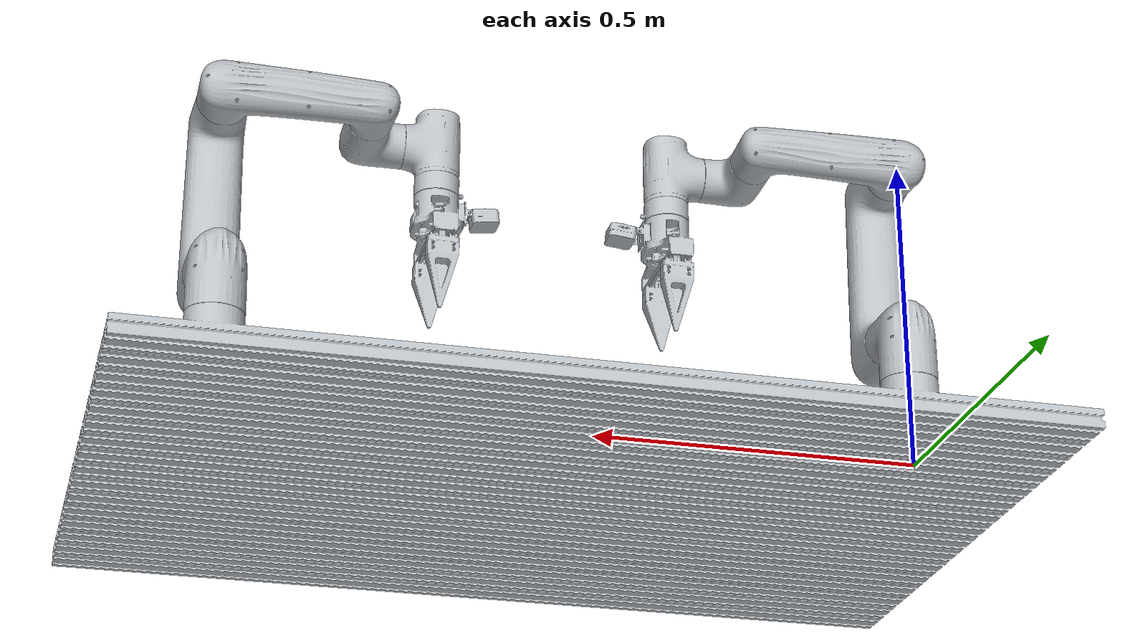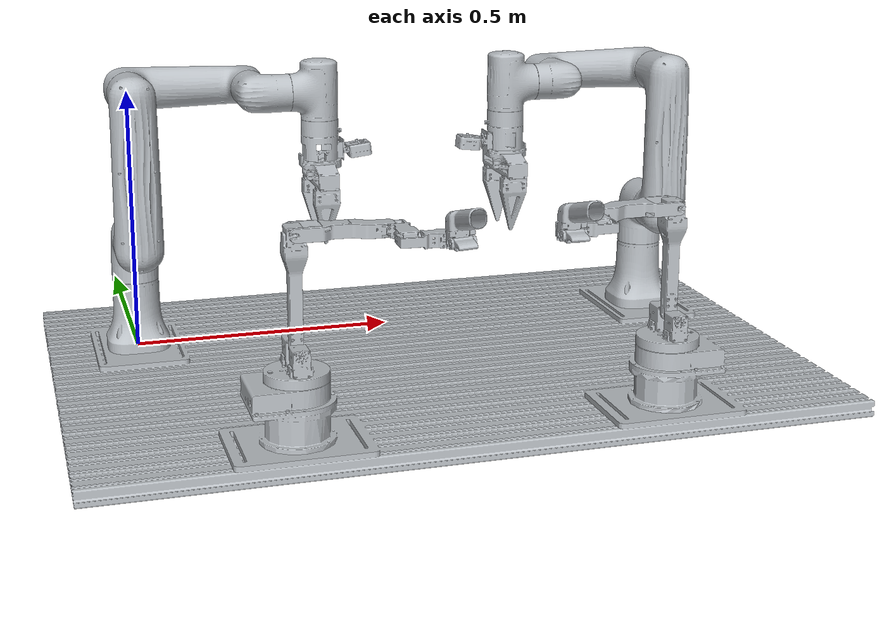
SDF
<?xml version="1.0"?>
<sdf version='1.6'>
  <model name='xtrainer_full_visual'>
    <static>true</static>
    <link name='xtrainer_visual_root'>
      <inertial>
        <mass>1.0</mass>
        <inertia>
          <ixx>0.1</ixx><ixy>0</ixy><ixz>0</ixz>
          <iyy>0.1</iyy><iyz>0</iyz><izz>0.1</izz>
        </inertia>
      </inertial>
      <visual name='visual_J1_1'>
        <pose>0 0 0 0 0 0</pose>
        <geometry>
          <mesh>
            <uri>../meshes/xtrainer_full_usd/J1_1.stl</uri>
            <scale>1 1 1</scale>
          </mesh>
        </geometry>
        <material>
          <ambient>0.72 0.74 0.76 1</ambient>
          <diffuse>0.72 0.74 0.76 1</diffuse>
        </material>
      </visual>
      <visual name='visual_J1_2'>
        <pose>0 0 0 0 0 0</pose>
        <geometry>
          <mesh>
            <uri>../meshes/xtrainer_full_usd/J1_2.stl</uri>
            <scale>1 1 1</scale>
          </mesh>
        </geometry>
        <material>
          <ambient>0.72 0.74 0.76 1</ambient>
          <diffuse>0.72 0.74 0.76 1</diffuse>
        </material>
      </visual>
      <visual name='visual_J1_3'>
        <pose>0 0 0 0 0 0</pose>
        <geometry>
          <mesh>
            <uri>../meshes/xtrainer_full_usd/J1_3.stl</uri>
            <scale>1 1 1</scale>
          </mesh>
        </geometry>
        <material>
          <ambient>0.72 0.74 0.76 1</ambient>
          <diffuse>0.72 0.74 0.76 1</diffuse>
        </material>
      </visual>
      <visual name='visual_J1_4'>
        <pose>0 0 0 0 0 0</pose>
        <geometry>
          <mesh>
            <uri>../meshes/xtrainer_full_usd/J1_4.stl</uri>
            <scale>1 1 1</scale>
          </mesh>
        </geometry>
        <material>
          <ambient>0.72 0.74 0.76 1</ambient>
          <diffuse>0.72 0.74 0.76 1</diffuse>
        </material>
      </visual>
      <visual name='visual_J1_5'>
        <pose>0 0 0 0 0 0</pose>
        <geometry>
          <mesh>
            <uri>../meshes/xtrainer_full_usd/J1_5.stl</uri>
            <scale>1 1 1</scale>
          </mesh>
        </geometry>
        <material>
          <ambient>0.72 0.74 0.76 1</ambient>
          <diffuse>0.72 0.74 0.76 1</diffuse>
        </material>
      </visual>
      <visual name='visual_J1_6'>
        <pose>0 0 0 0 0 0</pose>
        <geometry>
          <mesh>
            <uri>../meshes/xtrainer_full_usd/J1_6.stl</uri>
            <scale>1 1 1</scale>
          </mesh>
        </geometry>
        <material>
          <ambient>0.72 0.74 0.76 1</ambient>
          <diffuse>0.72 0.74 0.76 1</diffuse>
        </material>
      </visual>
      <visual name='visual_J1_7'>
        <pose>0 0 0 0 0 0</pose>
        <geometry>
          <mesh>
            <uri>../meshes/xtrainer_full_usd/J1_7.stl</uri>
            <scale>1 1 1</scale>
          </mesh>
        </geometry>
        <material>
          <ambient>0.72 0.74 0.76 1</ambient>
          <diffuse>0.72 0.74 0.76 1</diffuse>
        </material>
      </visual>
      <visual name='visual_J1_8'>
        <pose>0 0 0 0 0 0</pose>
        <geometry>
          <mesh>
            <uri>../meshes/xtrainer_full_usd/J1_8.stl</uri>
            <scale>1 1 1</scale>
          </mesh>
        </geometry>
        <material>
          <ambient>0.72 0.74 0.76 1</ambient>
          <diffuse>0.72 0.74 0.76 1</diffuse>
        </material>
      </visual>
      <visual name='visual_J2_1'>
        <pose>0 0 0 0 0 0</pose>
        <geometry>
          <mesh>
            <uri>../meshes/xtrainer_full_usd/J2_1.stl</uri>
            <scale>1 1 1</scale>
          </mesh>
        </geometry>
        <material>
          <ambient>0.72 0.74 0.76 1</ambient>
          <diffuse>0.72 0.74 0.76 1</diffuse>
        </material>
      </visual>
      <visual name='visual_J2_2'>
        <pose>0 0 0 0 0 0</pose>
        <geometry>
          <mesh>
            <uri>../meshes/xtrainer_full_usd/J2_2.stl</uri>
            <scale>1 1 1</scale>
          </mesh>
        </geometry>
        <material>
          <ambient>0.72 0.74 0.76 1</ambient>
          <diffuse>0.72 0.74 0.76 1</diffuse>
        </material>
      </visual>
      <visual name='visual_J2_3'>
        <pose>0 0 0 0 0 0</pose>
        <geometry>
          <mesh>
            <uri>../meshes/xtrainer_full_usd/J2_3.stl</uri>
            <scale>1 1 1</scale>
          </mesh>
        </geometry>
        <material>
          <ambient>0.72 0.74 0.76 1</ambient>
          <diffuse>0.72 0.74 0.76 1</diffuse>
        </material>
      </visual>
      <visual name='visual_J2_4'>
        <pose>0 0 0 0 0 0</pose>
        <geometry>
          <mesh>
            <uri>../meshes/xtrainer_full_usd/J2_4.stl</uri>
            <scale>1 1 1</scale>
          </mesh>
        </geometry>
        <material>
          <ambient>0.72 0.74 0.76 1</ambient>
          <diffuse>0.72 0.74 0.76 1</diffuse>
        </material>
      </visual>
      <visual name='visual_J2_5'>
        <pose>0 0 0 0 0 0</pose>
        <geometry>
          <mesh>
            <uri>../meshes/xtrainer_full_usd/J2_5.stl</uri>
            <scale>1 1 1</scale>
          </mesh>
        </geometry>
        <material>
          <ambient>0.72 0.74 0.76 1</ambient>
          <diffuse>0.72 0.74 0.76 1</diffuse>
        </material>
      </visual>
      <visual name='visual_J2_6'>
        <pose>0 0 0 0 0 0</pose>
        <geometry>
          <mesh>
            <uri>../meshes/xtrainer_full_usd/J2_6.stl</uri>
            <scale>1 1 1</scale>
          </mesh>
        </geometry>
        <material>
          <ambient>0.72 0.74 0.76 1</ambient>
          <diffuse>0.72 0.74 0.76 1</diffuse>
        </material>
      </visual>
      <visual name='visual_J2_7'>
        <pose>0 0 0 0 0 0</pose>
        <geometry>
          <mesh>
            <uri>../meshes/xtrainer_full_usd/J2_7.stl</uri>
            <scale>1 1 1</scale>
          </mesh>
        </geometry>
        <material>
          <ambient>0.72 0.74 0.76 1</ambient>
          <diffuse>0.72 0.74 0.76 1</diffuse>
        </material>
      </visual>
      <visual name='visual_J2_8'>
        <pose>0 0 0 0 0 0</pose>
        <geometry>
          <mesh>
            <uri>../meshes/xtrainer_full_usd/J2_8.stl</uri>
            <scale>1 1 1</scale>
          </mesh>
        </geometry>
        <material>
          <ambient>0.72 0.74 0.76 1</ambient>
          <diffuse>0.72 0.74 0.76 1</diffuse>
        </material>
      </visual>
      <visual name='visual_J3_1'>
        <pose>0 0 0 0 0 0</pose>
        <geometry>
          <mesh>
            <uri>../meshes/xtrainer_full_usd/J3_1.stl</uri>
            <scale>1 1 1</scale>
          </mesh>
        </geometry>
        <material>
          <ambient>0.72 0.74 0.76 1</ambient>
          <diffuse>0.72 0.74 0.76 1</diffuse>
        </material>
      </visual>
      <visual name='visual_J3_2'>
        <pose>0 0 0 0 0 0</pose>
        <geometry>
          <mesh>
            <uri>../meshes/xtrainer_full_usd/J3_2.stl</uri>
            <scale>1 1 1</scale>
          </mesh>
        </geometry>
        <material>
          <ambient>0.72 0.74 0.76 1</ambient>
          <diffuse>0.72 0.74 0.76 1</diffuse>
        </material>
      </visual>
      <visual name='visual_J3_3'>
        <pose>0 0 0 0 0 0</pose>
        <geometry>
          <mesh>
            <uri>../meshes/xtrainer_full_usd/J3_3.stl</uri>
            <scale>1 1 1</scale>
          </mesh>
        </geometry>
        <material>
          <ambient>0.72 0.74 0.76 1</ambient>
          <diffuse>0.72 0.74 0.76 1</diffuse>
        </material>
      </visual>
      <visual name='visual_J3_4'>
        <pose>0 0 0 0 0 0</pose>
        <geometry>
          <mesh>
            <uri>../meshes/xtrainer_full_usd/J3_4.stl</uri>
            <scale>1 1 1</scale>
          </mesh>
        </geometry>
        <material>
          <ambient>0.72 0.74 0.76 1</ambient>
          <diffuse>0.72 0.74 0.76 1</diffuse>
        </material>
      </visual>
      <visual name='visual_J3_5'>
        <pose>0 0 0 0 0 0</pose>
        <geometry>
          <mesh>
            <uri>../meshes/xtrainer_full_usd/J3_5.stl</uri>
            <scale>1 1 1</scale>
          </mesh>
        </geometry>
        <material>
          <ambient>0.72 0.74 0.76 1</ambient>
          <diffuse>0.72 0.74 0.76 1</diffuse>
        </material>
      </visual>
      <visual name='visual_J3_6'>
        <pose>0 0 0 0 0 0</pose>
        <geometry>
          <mesh>
            <uri>../meshes/xtrainer_full_usd/J3_6.stl</uri>
            <scale>1 1 1</scale>
          </mesh>
        </geometry>
        <material>
          <ambient>0.72 0.74 0.76 1</ambient>
          <diffuse>0.72 0.74 0.76 1</diffuse>
        </material>
      </visual>
      <visual name='visual_J4_1'>
        <pose>0 0 0 0 0 0</pose>
        <geometry>
          <mesh>
            <uri>../meshes/xtrainer_full_usd/J4_1.stl</uri>
            <scale>1 1 1</scale>
          </mesh>
        </geometry>
        <material>
          <ambient>0.72 0.74 0.76 1</ambient>
          <diffuse>0.72 0.74 0.76 1</diffuse>
        </material>
      </visual>
      <visual name='visual_J4_2'>
        <pose>0 0 0 0 0 0</pose>
        <geometry>
          <mesh>
            <uri>../meshes/xtrainer_full_usd/J4_2.stl</uri>
            <scale>1 1 1</scale>
          </mesh>
        </geometry>
        <material>
          <ambient>0.72 0.74 0.76 1</ambient>
          <diffuse>0.72 0.74 0.76 1</diffuse>
        </material>
      </visual>
      <visual name='visual_J4_3'>
        <pose>0 0 0 0 0 0</pose>
        <geometry>
          <mesh>
            <uri>../meshes/xtrainer_full_usd/J4_3.stl</uri>
            <scale>1 1 1</scale>
          </mesh>
        </geometry>
        <material>
          <ambient>0.72 0.74 0.76 1</ambient>
          <diffuse>0.72 0.74 0.76 1</diffuse>
        </material>
      </visual>
      <visual name='visual_J4_4'>
        <pose>0 0 0 0 0 0</pose>
        <geometry>
          <mesh>
            <uri>../meshes/xtrainer_full_usd/J4_4.stl</uri>
            <scale>1 1 1</scale>
          </mesh>
        </geometry>
        <material>
          <ambient>0.72 0.74 0.76 1</ambient>
          <diffuse>0.72 0.74 0.76 1</diffuse>
        </material>
      </visual>
      <visual name='visual_J4_5'>
        <pose>0 0 0 0 0 0</pose>
        <geometry>
          <mesh>
            <uri>../meshes/xtrainer_full_usd/J4_5.stl</uri>
            <scale>1 1 1</scale>
          </mesh>
        </geometry>
        <material>
          <ambient>0.72 0.74 0.76 1</ambient>
          <diffuse>0.72 0.74 0.76 1</diffuse>
        </material>
      </visual>
      <visual name='visual_J4_6'>
        <pose>0 0 0 0 0 0</pose>
        <geometry>
          <mesh>
            <uri>../meshes/xtrainer_full_usd/J4_6.stl</uri>
            <scale>1 1 1</scale>
          </mesh>
        </geometry>
        <material>
          <ambient>0.72 0.74 0.76 1</ambient>
          <diffuse>0.72 0.74 0.76 1</diffuse>
        </material>
      </visual>
      <visual name='visual_base_link'>
        <pose>0 0 0 0 0 0</pose>
        <geometry>
          <mesh>
            <uri>../meshes/xtrainer_full_usd/base_link.stl</uri>
            <scale>1 1 1</scale>
          </mesh>
        </geometry>
        <material>
          <ambient>0.72 0.74 0.76 1</ambient>
          <diffuse>0.72 0.74 0.76 1</diffuse>
        </material>
      </visual>
    </link>
  </model>
</sdf>
